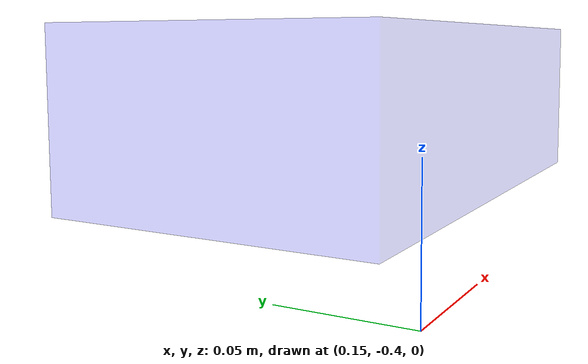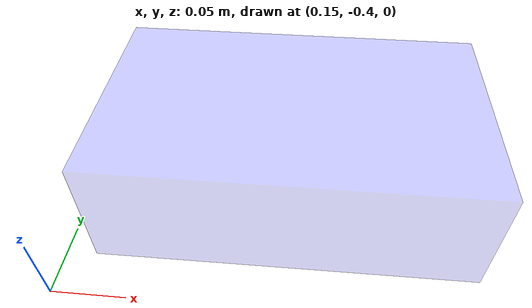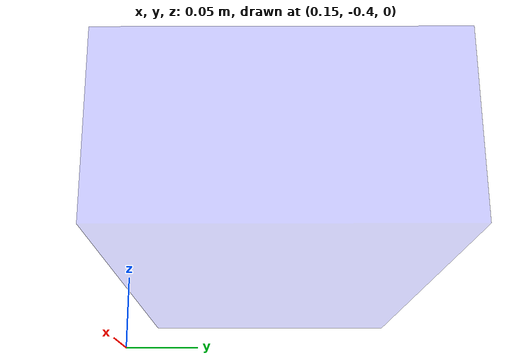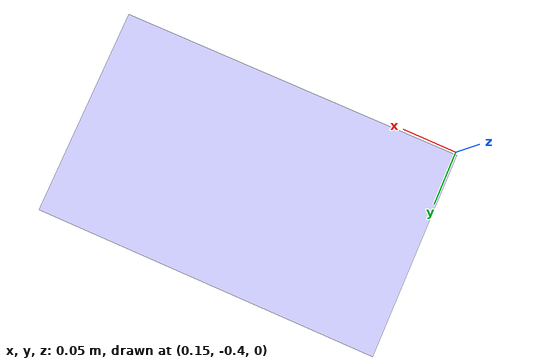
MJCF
<mujoco model="props">
  <worldbody>
    <body name="object" pos="0.3 -0.3 0.05">
      <freejoint/>
      <geom type="box"
            rgba="0 0 1 0.2"
            size="0.125 0.075 0.04"
            mass="1.0"
            condim="6"
            friction="3.0 0.05 0.0001"
            solimp="0.99 0.995 0.0005 0.5 2"
            solref="0.002 1.0"

            />
    </body>
  </worldbody>
</mujoco>
